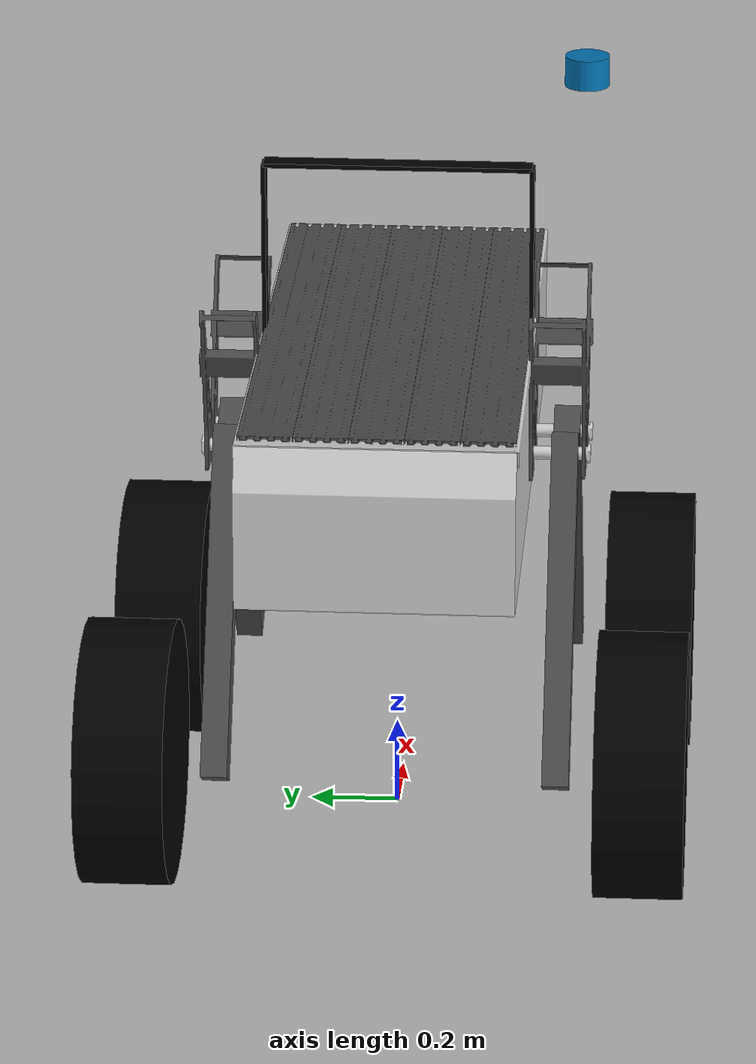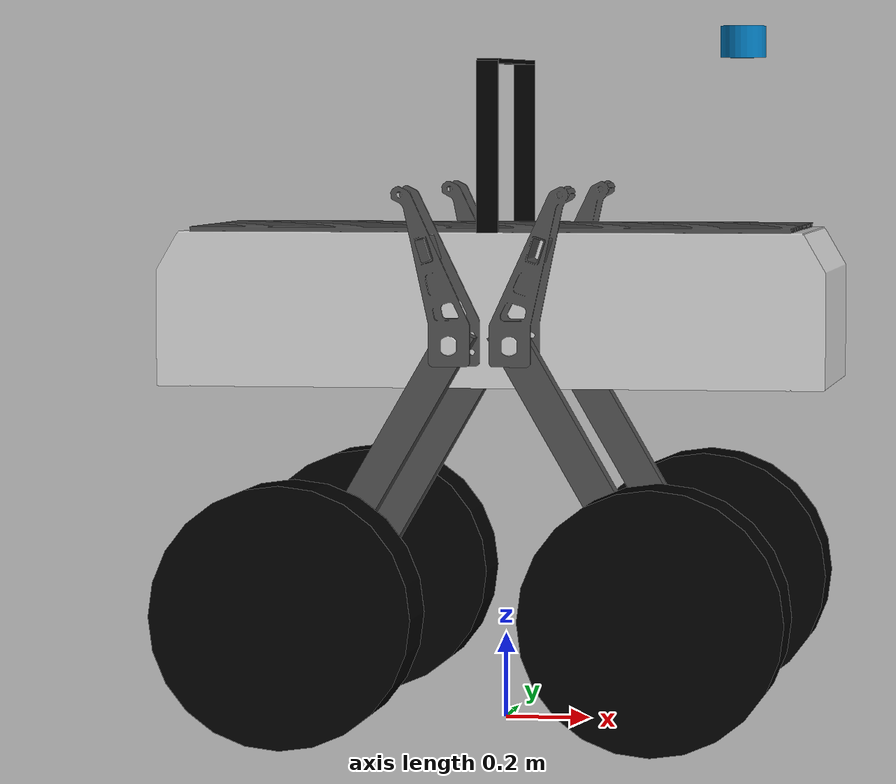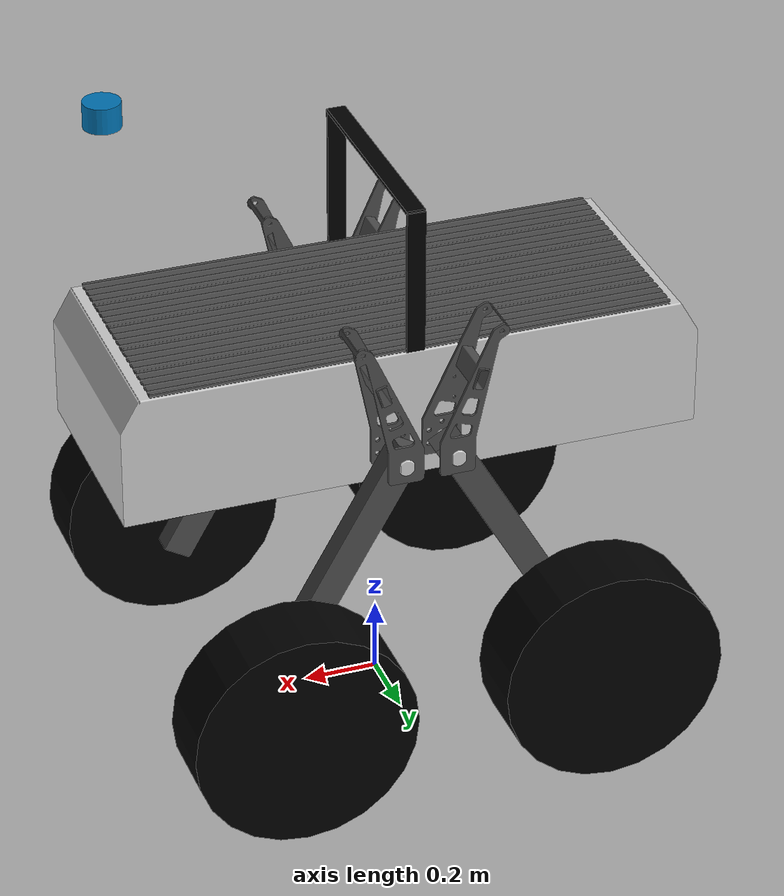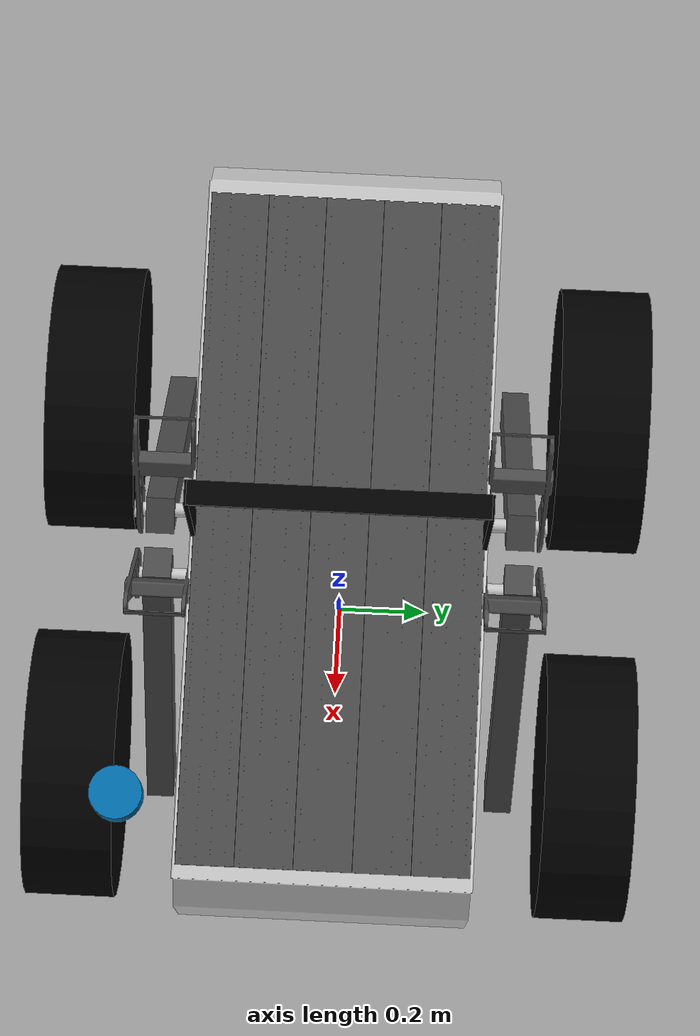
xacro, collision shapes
<?xml version="1.0" encoding="utf-8"?>
<robot name="agar" xmlns:xacro="http://www.ros.org/wiki/xacro">

    <xacro:arg name="robot_namespace" default="/"/>

    <xacro:property name="front_right_leg_fixture" value="front_right_leg_fixture" />
    <xacro:property name="rear_right_leg_fixture" value="rear_right_leg_fixture" />
    <xacro:property name="front_left_leg_fixture" value="front_left_leg_fixture" />
    <xacro:property name="rear_left_leg_fixture" value="rear_left_leg_fixture" />
    <xacro:property name="front_right_leg" value="front_right_leg" />
    <xacro:property name="rear_right_leg" value="rear_right_leg" />
    <xacro:property name="front_left_leg" value="front_left_leg" />
    <xacro:property name="rear_left_leg" value="rear_left_leg" />
    <xacro:property name="front_right_wheel" value="front_right" />
    <xacro:property name="rear_right_wheel" value="rear_right" />
    <xacro:property name="front_left_wheel" value="front_left" />
    <xacro:property name="rear_left_wheel" value="rear_left" />

    <xacro:include filename="$(find agar_description)/urdf/inertia.xacro" />
    <xacro:include filename="$(find agar_description)/urdf/materials.xacro" />
    <xacro:include filename="$(find agar_description)/urdf/leg_fixture.xacro" />
    <xacro:include filename="$(find agar_description)/urdf/leg_low_poly.xacro" />
    <xacro:include filename="$(find agar_description)/urdf/wheel_low_poly_fix.xacro" />
    <xacro:include filename="$(find agar_description)/urdf/stand.xacro" />
    <xacro:include filename="$(find agar_description)/urdf/lidar_vlp16.xacro" />

    <!-- AgAR frame -->
    <link name="base_footprint">
        <visual>
            <origin xyz="0 0 0" rpy="0 0 1.67" />
            <geometry>
                <box size="0.001 0.001 0.001" />
            </geometry>
        </visual>
    </link>

    <link name="base_link">
        <visual>
            <origin xyz="0 0 -0.176" rpy="0 0 0" />
            <geometry>
                <mesh filename="package://agar_description/meshes/chassis.stl" />
            </geometry>
            <material name="light_grey" />
        </visual>
        <xacro:box_inertia m="600" l="0.3" w="1.9" h="0.61" xyz="0 0 0" rpy="0 0 0" />
        <collision>
            <origin xyz="0 0 -0.176" rpy="0 0 0 " />
            <geometry>
                <mesh filename="package://agar_description/meshes/chassis.stl" />
            </geometry>
        </collision>
    </link>
    <joint name="base_footprint_joint" type="fixed">
        <origin xyz="0 0 0.97943" rpy="0 0 0" />
        <parent link="base_footprint"/>
        <child link="base_link" />
    </joint>
    <gazebo reference="base_link">
        <material>Gazebo/Grey</material>
    </gazebo>

    <link name="raster">
        <visual>
            <origin xyz="0 0 0" rpy="0 0 0" />
            <geometry>
                <mesh filename="package://agar_description/meshes/raster.stl" />
            </geometry>
            <material name="grey" />
        </visual>
        <inertial>
            <origin xyz="0 0 0.01" rpy="0 0 0" />
            <mass value="16.76" />
            <inertia ixx="0.5031142899449066" ixy="0" ixz="0" iyy="2.7377808234150605" iyz="0" izz="3.240266613388063" />
        </inertial>
        <collision>
            <origin xyz="0 0 0" rpy="0 0 0" />
            <geometry>
                <mesh filename="package://agar_description/meshes/raster.stl" />
            </geometry>
        </collision>
    </link>
    <joint name="raster_joint" type="fixed">
        <origin xyz="0 0 0.176" rpy="0 0 0" />
        <parent link="base_link" />
        <child link="raster" />
    </joint>
    <gazebo reference="raster">
        <material>Gazebo/Grey</material>
    </gazebo>

    <!-- AgAR Legs fixtures -->
    <xacro:leg_fixture name="${front_right_leg_fixture}" type="a" xyz="0 0 0" rpy="0 0 0" ixyz="0.03 -0.06 0.13" irpy="0 0 0"
        ixx="0.05459239453300868" ixy="0" ixz="0" iyy="0.05970593665262832" iyz="0" izz="0.01507425976279013" jxyz="0.07 -0.307 -0.076" jrpy="0 0 0" />
    <xacro:leg_fixture name="${rear_right_leg_fixture}" type="b" xyz="0 0 0" rpy="0 0 0" ixyz="0.03 0.06 0.13" irpy="0 0 0"
        ixx="0.05459239565745024" ixy="0" ixz="0" iyy="0.05970593665262832" iyz="0" izz="0.015074260887231683" jxyz="-0.07 -0.307 -0.076" jrpy="0 0 ${pi}" />
    <xacro:leg_fixture name="${front_left_leg_fixture}" type="b" xyz="0 0 0" rpy="0 0 0" ixyz="0.03 -0.06 0.13" irpy="0 0 0"
        ixx="0.05459239565745024" ixy="0" ixz="0" iyy="0.05970593665262832" iyz="0" izz="0.015074260887231683" jxyz="0.07 0.307 -0.076" jrpy="0 0 0" />
    <xacro:leg_fixture name="${rear_left_leg_fixture}" type="a" xyz="0 0 0" rpy="0 0 0" ixyz="0.03 0.06 0.13" irpy="0 0 0"
        ixx="0.05459239453300868" ixy="0" ixz="0" iyy="0.05970593665262832" iyz="0" izz="0.01507425976279013" jxyz="-0.07 0.307 -0.076" jrpy="0 0 ${pi}" />

    <!-- AgAR Legs -->
    <xacro:leg_low_poly name="${front_right_leg}" type="a" xyz="0 0 0" rpy="0 0 ${pi}" ixyz="-0.58 0.02 0.08" irpy="0 0 0"
        ixx="1.1302317084114302" ixy="0" ixz="0" iyy="3.845526063904824" iyz="0" izz="3.271057725788208" jxyz="0.18 -0.075 -0.31" jrpy="0 ${pi/3} 0" />
    <xacro:leg_low_poly name="${rear_right_leg}" type="a" xyz="0 0 0" rpy="0 0 -${pi}" ixyz="-0.58 0.02 0.08" irpy="0 0 0"
        ixx="1.1302317084114302" ixy="0" ixz="0" iyy="3.845526063904824" iyz="0" izz="3.271057725788208" jxyz="0.18 0.075 -0.31" jrpy="0 ${pi/3} 0" />
    <xacro:leg_low_poly name="${front_left_leg}" type="a" xyz="0 0 0" rpy="0 0 ${pi}" ixyz="-0.58 0.02 0.08" irpy="0 0 0"
        ixx="1.1302317084114302" ixy="0" ixz="0" iyy="3.845526063904824" iyz="0" izz="3.271057725788208" jxyz="0.18 0.075 -0.31" jrpy="0 ${pi/3} 0" />
    <xacro:leg_low_poly name="${rear_left_leg}" type="a" xyz="0 0 0" rpy="0 0 -${pi}" ixyz="-0.58 0.02 0.08" irpy="0 0 0"
        ixx="1.1302317084114302" ixy="0" ixz="0" iyy="3.845526063904824" iyz="0" izz="3.271057725788208" jxyz="0.18 -0.075 -0.31" jrpy="0 ${pi/3} 0" />

    <!-- AgAR Wheels -->
    <xacro:wheel_low_poly_fix name="${front_right_wheel}" type="a" xyz="0 0 0" rpy="${pi/2} 0 0" ixyz="0 0 0" irpy="0 0 0"
        ixx="0.419330921877652" ixy="0" ixz="0" iyy="0.7560959596612022" iyz="0" izz="0.419330921877652" jxyz="0.341 -0.18999 -0.0002" jrpy="0 0 0" />
    <xacro:wheel_low_poly_fix name="${rear_right_wheel}" type="a" xyz="0 0 0" rpy="${pi/2} 0 0" ixyz="0 0 0" irpy="0 0 0"
        ixx="0.419330921877652" ixy="0" ixz="0" iyy="0.7560959596612022" iyz="0" izz="0.419330921877652" jxyz="0.341 0.18999 -0.0002" jrpy="0 0 ${pi}" />
    <xacro:wheel_low_poly_fix name="${front_left_wheel}" type="a" xyz="0 0 0" rpy="${pi/2} 0 0" ixyz="0 0 0" irpy="0 0 0"
        ixx="0.419330921877652" ixy="0" ixz="0" iyy="0.7560959596612022" iyz="0" izz="0.419330921877652" jxyz="0.341 0.18999 -0.0002" jrpy="0 0 0" />
    <xacro:wheel_low_poly_fix name="${rear_left_wheel}" type="a" xyz="0 0 0" rpy="${pi/2} 0 0" ixyz="0 0 0" irpy="0 0 0"
        ixx="0.419330921877652" ixy="0" ixz="0" iyy="0.7560959596612022" iyz="0" izz="0.419330921877652" jxyz="0.341 -0.18999 -0.0002" jrpy="0 0 ${pi}" />

</robot>

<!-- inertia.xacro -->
<robot name="agar" xmlns:xacro="http://www.ros.org/wiki/xacro">

    <xacro:macro name="box_inertia" params="m l w h xyz rpy">
        <inertial>
            <origin xyz="${xyz}" rpy="${rpy}" />
            <mass value="${m}" />
            <inertia
                ixx="${(m/12) * (h*h + l*l)}" ixy="0" ixz="0"
                iyy="${(m/12) * (w*w + l*l)}" iyz="0"
                izz="${(m/12) * (w*w + h*h)}" />
        </inertial>
    </xacro:macro>

</robot>

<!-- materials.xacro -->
<robot name="agar" xmlns:xacro="http://www.ros.org/wiki/xacro">
    <material name="grey">
        <color rgba="0.3 0.3 0.3 1.0" />
    </material>
    <material name="medium_grey">
        <color rgba="0.6 0.6 0.6 1.0" />
    </material>
    <material name="light_grey">
        <color rgba="0.8 0.8 0.8 1.0" />
    </material>
    <material name="black">
        <color rgba="0.0 0.0 0.0 1.0" />
    </material>
    <material name="white">
        <color rgba="1.0 1.0 1.0 1.0" />
    </material>
    <material name="red">
        <color rgba="1.0 0.0 0.0 1.0" />
    </material>
</robot>

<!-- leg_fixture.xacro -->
<robot name="agar" xmlns:xacro="http://www.ros.org/wiki/xacro">
    <xacro:macro name="leg_fixture" params="name type xyz rpy ixyz irpy ixx ixy ixz iyy iyz izz jxyz jrpy">
        <link name="${name}">
            <visual>
                <origin xyz="${xyz}" rpy="${rpy}" />
                <geometry>
                    <mesh filename="package://agar_description/meshes/leg_fixture_${type}.stl" />
                </geometry>
                <material name="grey" />
            </visual>
            <inertial>
                <origin xyz="${ixyz}" rpy="${irpy}" />
                <mass value="3.43" />
                <inertia ixx="${ixx}" ixy="${ixy}" ixz="${ixz}" iyy="${iyy}" iyz="${iyz}" izz="${izz}" />
            </inertial>
            <collision>
                <origin xyz="${xyz}" rpy="${rpy}" />
                <geometry>
                    <mesh filename="package://agar_description/meshes/leg_fixture_${type}.stl" />
                </geometry>
            </collision>
        </link>
        <joint name="${name}_joint" type="fixed">
            <origin xyz="${jxyz}" rpy="${jrpy}" />
            <parent link="base_link" />
            <child link="${name}" />
        </joint>
        <gazebo reference="${name}">
            <material>Gazebo/DarkGrey</material>
        </gazebo>
    </xacro:macro>
</robot>

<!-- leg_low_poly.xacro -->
<robot name="agar" xmlns:xacro="http://www.ros.org/wiki/xacro">
    <xacro:macro name="leg_low_poly" params="name type xyz rpy ixyz irpy ixx ixy ixz iyy iyz izz jxyz jrpy">
        <link name="${name}">
            <visual>
                <origin xyz="${xyz}" rpy="${rpy}" />
                <geometry>
                     <box size="0.8 0.06 0.08" />
                </geometry>
                <material name="grey" />
            </visual>
            <inertial>
                <origin xyz="${ixyz}" rpy="${irpy}" />
                <mass value="55.56" />
                <inertia ixx="${ixx}" ixy="${ixy}" ixz="${ixz}" iyy="${iyy}" iyz="${iyz}" izz="${izz}" />
            </inertial>
            <collision>
                <origin xyz="${xyz}" rpy="${rpy}" />
                <geometry>
                     <box size="0.8 0.06 0.08" />
                </geometry>
            </collision>
        </link>
        <joint name="${name}_joint" type="fixed">
            <origin xyz="${jxyz}" rpy="${jrpy}" />
            <parent link="${name}_fixture" />
            <child link="${name}" />
        </joint>
        <gazebo reference="${name}">
            <material>Gazebo/DarkGrey</material>
        </gazebo>
    </xacro:macro>
</robot>

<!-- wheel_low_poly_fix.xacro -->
<robot name="agar"
    xmlns:xacro="http://www.ros.org/wiki/xacro">
    <xacro:macro name="wheel_low_poly_fix" params="name type xyz rpy ixyz irpy ixx ixy ixz iyy iyz izz jxyz jrpy">
        <link name="${name}_wheel">
            <visual>
                <origin xyz="${xyz}" rpy="${rpy}" />
                <geometry>
                    <cylinder length="0.2" radius="0.3"/>
                </geometry>
                <material name="black" />
            </visual>
            <inertial>
                <origin xyz="${ixyz}" rpy="${irpy}" />
                <mass value="12" />
                <inertia ixx="${ixx}" ixy="${ixy}" ixz="${ixz}" iyy="${iyy}" iyz="${iyz}" izz="${izz}" />
            </inertial>
            <collision>
                <origin xyz="${xyz}" rpy="${rpy}" />
                <geometry>
                    <cylinder length="0.2" radius="0.3"/>
                </geometry>
            </collision>
        </link>

        <joint name="${name}_wheel_joint" type="fixed">
            <origin xyz="${jxyz}" rpy="${jrpy}" />
            <parent link="${name}_leg"/>
            <child link="${name}_wheel" />
        </joint>
        <gazebo reference="${name}_wheel">
            <material>Gazebo/Black</material>
        </gazebo>
    </xacro:macro>
</robot>

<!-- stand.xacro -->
<robot xmlns:xacro="http://www.ros.org/wiki/xacro">
    <link name="top_stand">
        <visual>
            <origin xyz="0 0 0" rpy="0 0 0" />
            <geometry>
                <box size="0.05 0.60 0.01" />
            </geometry>
            <material name="black" />
        </visual>
        <xacro:box_inertia m="1" l="0.05" w="0.6" h="0.01" xyz="0 0 0" rpy="0 0 0" />
        <collision>
            <origin xyz="0 0 0" rpy="0 0 0" />
            <geometry>
                <box size="0.05 0.60 0.01" />
            </geometry>
        </collision>
    </link>
    <joint name="top_stand_joint" type="fixed">
        <origin xyz="0 0 0.575" rpy="0 0 0" />
        <parent link="base_link" />
        <child link="top_stand" />
    </joint>
    <gazebo reference="top_stand">
        <material>Gazebo/Grey</material>
    </gazebo>

    <link name="left_stand">
        <visual>
            <origin xyz="0 0 0" rpy="0 0 0" />
            <geometry>
                <box size="0.05 0.01 0.4" />
            </geometry>
            <material name="black" />
        </visual>
        <xacro:box_inertia m="1" l="0.05" w="0.01" h="0.4" xyz="0 0 0" rpy="0 0 0" />
        <collision>
            <origin xyz="0 0 0" rpy="0 0 0" />
            <geometry>
                <box size="0.05 0.01 0.4" />
            </geometry>
        </collision>
    </link>
    <joint name="left_stand_joint" type="fixed">
        <origin xyz="0 0.3 -0.20" rpy="0 0 0" />
        <parent link="top_stand" />
        <child link="left_stand" />
    </joint>
    <gazebo reference="left_stand">
        <material>Gazebo/Grey</material>
    </gazebo>

    <link name="right_stand">
        <visual>
            <origin xyz="0 0 0" rpy="0 0 0" />
            <geometry>
                <box size="0.05 0.01 0.4" />
            </geometry>
            <material name="black" />
        </visual>
        <xacro:box_inertia m="1" l="0.05" w="0.01" h="0.4" xyz="0 0 0" rpy="0 0 0" />
        <collision>
            <origin xyz="0 0 0" rpy="0 0 0" />
            <geometry>
                <box size="0.05 0.01 0.4" />
            </geometry>
        </collision>
    </link>
    <joint name="right_stand_joint" type="fixed">
        <origin xyz="0 -0.3 -0.20" rpy="0 0 0" />
        <parent link="top_stand" />
        <child link="right_stand" />
    </joint>
    <gazebo reference="right_stand">
        <material>Gazebo/Grey</material>
    </gazebo>

</robot>

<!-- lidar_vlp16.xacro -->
<robot xmlns:xacro="http://www.ros.org/wiki/xacro">

    <link name="velodyne_stand">
        <visual>
            <origin xyz="0 0 0" rpy="0 0 0"/>
            <geometry>
                <cylinder length="0.0001" radius="0.0001"/>
            </geometry>
            <material name="black" />
        </visual>
        <collision>
            <origin xyz="0 0 0" rpy="0 0 0"/>
            <geometry>
                <cylinder length="0.0001" radius="0.0001"/>
            </geometry>
        </collision>
        <inertial>
            <mass value="0.0001" />
            <origin xyz="0 0 0" />
            <inertia ixx="0.001" ixy="0.0" ixz="0.0" iyy="0.001" iyz="0.0" izz="0.001" />
        </inertial>
    </link>
    <joint name="velodyne_stand_joint" type="fixed">
        <parent link="top_stand"/>
        <child link="velodyne_stand"/>
        <origin xyz="0.6 -0.4 0.005" rpy="0 0 0"/>
    </joint>

    <link name="velodyne_base_link">
        <inertial>
            <mass value="0.83"/>
            <origin xyz="0 0 0.03585"/>
            <inertia ixx="${(0.83 * (3.0*0.0516*0.0516 + 0.0717*0.0717)) / 12.0}" ixy="0" ixz="0" iyy="${(0.83 * (3.0*0.0516*0.0516 + 0.0717*0.0717)) / 12.0}" iyz="0" izz="${0.5 * 0.83 * (0.0516*0.0516)}"/>
        </inertial>
        <visual>
            <geometry>
                <mesh filename="package://agar_description/meshes/VLP16_base_1.dae" />
            </geometry>
        </visual>
        <visual>
            <geometry>
                <mesh filename="package://agar_description/meshes/VLP16_base_2.dae" />
            </geometry>
        </visual>
        <collision>
            <origin rpy="0 0 0" xyz="0 0 0.03585"/>
            <geometry>
                <cylinder radius="0.0516" length="0.0717"/>
            </geometry>
        </collision>
    </link>
    <joint name="velodyne_base_mount_joint" type="fixed">
        <origin xyz="0 0 0" rpy="0 0 0" />
        <parent link="velodyne_stand"/>
        <child link="velodyne_base_link"/>
    </joint>

    <link name="velodyne">
        <inertial>
            <mass value="0.01"/>
            <origin xyz="0 0 0"/>
            <inertia ixx="1e-7" ixy="0" ixz="0" iyy="1e-7" iyz="0" izz="1e-7"/>
        </inertial>
        <visual>
            <origin xyz="0 0 -0.0377" />
            <geometry>
                <mesh filename="package://agar_description/meshes/VLP16_scan.dae" />
            </geometry>
        </visual>
    </link>
    <joint name="velodyne_base_scan_joint" type="fixed">
        <origin xyz="0 0 0.0377" rpy="0 0 0" />
        <parent link="velodyne_base_link" />
        <child link="velodyne"/>
    </joint>

    <gazebo reference="velodyne">
        <material>Gazebo/Black</material>
    </gazebo>

</robot>
